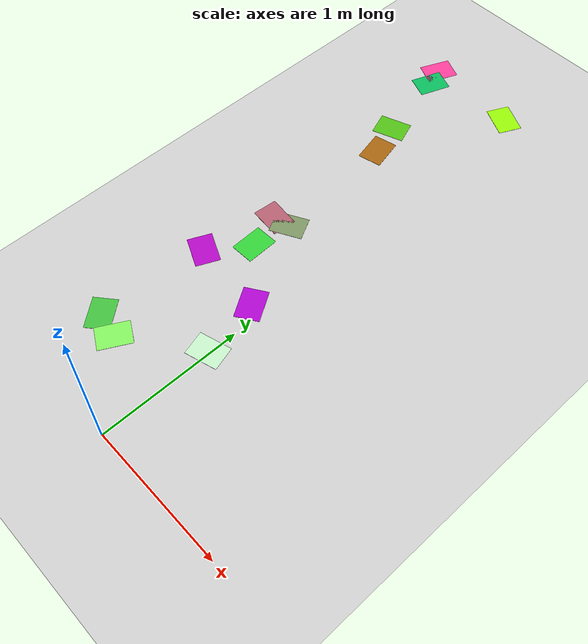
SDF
<sdf version="1.9">
 <world name="default">
  <model name="ground_plane">
   <static>true</static>
   <link name="link">
    <collision name="collision">
     <geometry><plane><normal>0 0 1</normal><size>1 1</size></plane></geometry>
    </collision>
    <visual name="visual">
     <geometry><plane><normal>0 0 1</normal><size>500 500</size></plane></geometry>
     <material>
      <ambient>0.8 0.8 0.8 1</ambient>
      <diffuse>0.8 0.8 0.8 1</diffuse>
      <specular>0.8 0.8 0.8 1</specular>
     </material>
    </visual>
    <inertial>
     <mass>1</mass>
     <inertia><ixx>1</ixx><ixy>0</ixy><ixz>0</ixz><iyy>1</iyy><iyz>0</iyz><izz>1</izz></inertia>
    </inertial>
   </link>
  </model>
  <model name="vio_floor_patch_7">
   <static>true</static>
   <pose>-0.5216131174642774 1.7895821676109458 .002 0 0 -1.6569978774965972</pose>
   <link name="patch">
    <visual name="patch">
     <geometry><box><size>.17 .23 .002</size></box></geometry>
     <material>
      <ambient>0.6956549193205513 0.3702510248059778 0.4359840816177738 1</ambient>
      <diffuse>0.6956549193205513 0.3702510248059778 0.4359840816177738 1</diffuse>
     </material>
    </visual>
   </link>
  </model>
  <model name="vio_floor_patch_8">
   <static>true</static>
   <pose>-0.7381200973863855 3.6604643216152555 .002 0 0 2.7321489187105645</pose>
   <link name="patch">
    <visual name="patch">
     <geometry><box><size>.17 .23 .002</size></box></geometry>
     <material>
      <ambient>0.976105081752404 0.2368197315261477 0.5948444530286083 1</ambient>
      <diffuse>0.976105081752404 0.2368197315261477 0.5948444530286083 1</diffuse>
     </material>
    </visual>
   </link>
  </model>
  <model name="vio_floor_patch_34">
   <static>true</static>
   <pose>-0.44279651217535304 1.539928625816077 .002 0 0 0.03693121363686025</pose>
   <link name="patch">
    <visual name="patch">
     <geometry><box><size>.17 .23 .002</size></box></geometry>
     <material>
      <ambient>0.19557809183194147 0.8161266248589276 0.21641666147418495 1</ambient>
      <diffuse>0.19557809183194147 0.8161266248589276 0.21641666147418495 1</diffuse>
     </material>
    </visual>
   </link>
  </model>
  <model name="vio_floor_patch_36">
   <static>true</static>
   <pose>-0.6363365765193498 1.2685222915715997 .002 0 0 -1.9988212840307722</pose>
   <link name="patch">
    <visual name="patch">
     <geometry><box><size>.17 .23 .002</size></box></geometry>
     <material>
      <ambient>0.6983185908520805 0.030119828684106054 0.7601096365062153 1</ambient>
      <diffuse>0.6983185908520805 0.030119828684106054 0.7601096365062153 1</diffuse>
     </material>
    </visual>
   </link>
  </model>
  <model name="vio_floor_patch_43">
   <static>true</static>
   <pose>-0.6868490318671129 0.484683986438732 .002 0 0 0.6945398546646366</pose>
   <link name="patch">
    <visual name="patch">
     <geometry><box><size>.17 .23 .002</size></box></geometry>
     <material>
      <ambient>0.25625420609505667 0.7431676426731451 0.24346501191216158 1</ambient>
      <diffuse>0.25625420609505667 0.7431676426731451 0.24346501191216158 1</diffuse>
     </material>
    </visual>
   </link>
  </model>
  <model name="vio_floor_patch_56">
   <static>true</static>
   <pose>-0.47747622744509616 2.73264313058519 .002 0 0 -2.9062275133701534</pose>
   <link name="patch">
    <visual name="patch">
     <geometry><box><size>.17 .23 .002</size></box></geometry>
     <material>
      <ambient>0.6421492430834127 0.38609570377596564 0.05965182144402757 1</ambient>
      <diffuse>0.6421492430834127 0.38609570377596564 0.05965182144402757 1</diffuse>
     </material>
    </visual>
   </link>
  </model>
  <model name="vio_floor_patch_72">
   <static>true</static>
   <pose>-0.05997603411294483 3.624690284610086 .002 0 0 -2.022752019885184</pose>
   <link name="patch">
    <visual name="patch">
     <geometry><box><size>.17 .23 .002</size></box></geometry>
     <material>
      <ambient>0.5867966063073883 0.9530586735963716 0.02748125684392992 1</ambient>
      <diffuse>0.5867966063073883 0.9530586735963716 0.02748125684392992 1</diffuse>
     </material>
    </visual>
   </link>
  </model>
  <model name="vio_floor_patch_88">
   <static>true</static>
   <pose>-0.5618456181964836 2.9659678878961167 .002 0 0 1.9278570367165986</pose>
   <link name="patch">
    <visual name="patch">
     <geometry><box><size>.17 .23 .002</size></box></geometry>
     <material>
      <ambient>0.3149361073294796 0.7431870743723056 0.08443403000805046 1</ambient>
      <diffuse>0.3149361073294796 0.7431870743723056 0.08443403000805046 1</diffuse>
     </material>
    </visual>
   </link>
  </model>
  <model name="vio_floor_patch_92">
   <static>true</static>
   <pose>-0.6884345635782037 3.5159289756852594 .002 0 0 -0.36001042325865074</pose>
   <link name="patch">
    <visual name="patch">
     <geometry><box><size>.17 .23 .002</size></box></geometry>
     <material>
      <ambient>0.029451176018239735 0.7255172615466364 0.3585513178886545 1</ambient>
      <diffuse>0.029451176018239735 0.7255172615466364 0.3585513178886545 1</diffuse>
     </material>
    </visual>
   </link>
  </model>
  <model name="vio_floor_patch_109">
   <static>true</static>
   <pose>-0.01817072161030675 0.8004617184667655 .002 0 0 1.8528299547224631</pose>
   <link name="patch">
    <visual name="patch">
     <geometry><box><size>.17 .23 .002</size></box></geometry>
     <material>
      <ambient>0.7669746547380858 0.930604611350339 0.7783841455705683 1</ambient>
      <diffuse>0.7669746547380858 0.930604611350339 0.7783841455705683 1</diffuse>
     </material>
    </visual>
   </link>
  </model>
  <model name="vio_floor_patch_115">
   <static>true</static>
   <pose>-0.501817394957101 0.4464416606198194 .002 0 0 -0.4993994148511507</pose>
   <link name="patch">
    <visual name="patch">
     <geometry><box><size>.17 .23 .002</size></box></geometry>
     <material>
      <ambient>0.5087341629898741 0.9288705137550717 0.36685930527194555 1</ambient>
      <diffuse>0.5087341629898741 0.9288705137550717 0.36685930527194555 1</diffuse>
     </material>
    </visual>
   </link>
  </model>
  <model name="vio_floor_patch_125">
   <static>true</static>
   <pose>-0.09500953542306445 1.216162522320337 .002 0 0 0.5731618808955838</pose>
   <link name="patch">
    <visual name="patch">
     <geometry><box><size>.17 .23 .002</size></box></geometry>
     <material>
      <ambient>0.6781011614092689 0.020988141269995993 0.8038451665364558 1</ambient>
      <diffuse>0.6781011614092689 0.020988141269995993 0.8038451665364558 1</diffuse>
     </material>
    </visual>
   </link>
  </model>
  <model name="vio_floor_patch_126">
   <static>true</static>
   <pose>-0.40500110197715045 1.816602430269687 .002 0 0 2.06203304973872</pose>
   <link name="patch">
    <visual name="patch">
     <geometry><box><size>.17 .23 .002</size></box></geometry>
     <material>
      <ambient>0.4852059853120431 0.5790347998571858 0.38884714363416584 1</ambient>
      <diffuse>0.4852059853120431 0.5790347998571858 0.38884714363416584 1</diffuse>
     </material>
    </visual>
   </link>
  </model>
 </world>
</sdf>
